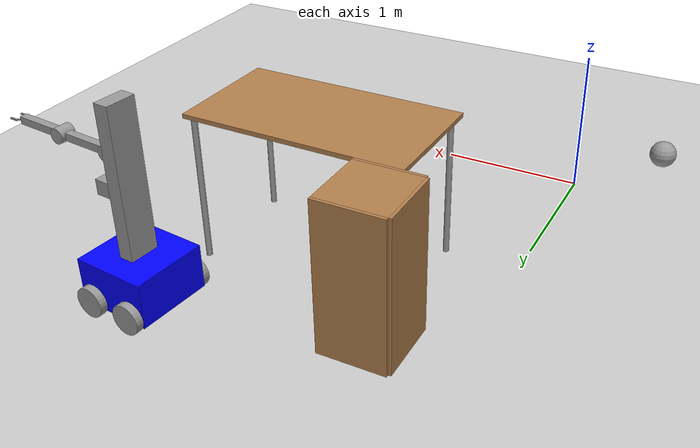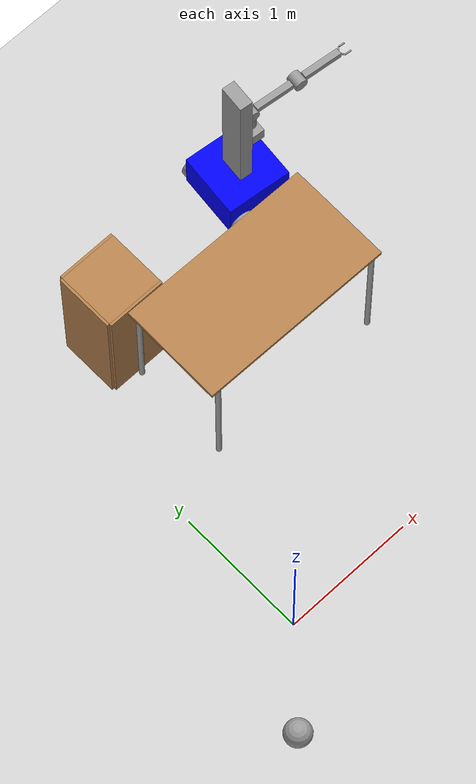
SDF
<sdf version="1.6">
 <world name="default">
  <model name="ground_plane">
   <static>1</static>
   <link name="link">
    <collision name="collision">
     <geometry><plane><normal>0 0 1</normal><size>100 100</size></plane></geometry>
     <surface>
      <contact><collide_bitmask>65535</collide_bitmask></contact>
      <friction><ode><mu>100</mu><mu2>50</mu2></ode></friction>
     </surface>
    </collision>
    <visual name="visual">
     <cast_shadows>0</cast_shadows>
     <geometry><plane><normal>0 0 1</normal><size>100 100</size></plane></geometry>
     <material>
      <script><uri>file://media/materials/scripts/gazebo.material</uri><name>Gazebo/Grey</name></script>
     </material>
    </visual>
   </link>
  </model>
  <model name="table_clone_0">
   <static>1</static>
   <link name="link">
    <collision name="surface">
     <pose>0 0 1 0 -0 0</pose>
     <geometry><box><size>1.5 0.8 0.03</size></box></geometry>
     <surface><friction><ode><mu>0.6</mu><mu2>0.6</mu2></ode></friction></surface>
    </collision>
    <visual name="visual1">
     <pose>0 0 1 0 -0 0</pose>
     <geometry><box><size>1.5 0.8 0.03</size></box></geometry>
     <material>
      <script><uri>file://media/materials/scripts/gazebo.material</uri><name>Gazebo/Wood</name></script>
     </material>
    </visual>
    <collision name="front_left_leg">
     <pose>0.68 0.38 0.5 0 -0 0</pose>
     <geometry><cylinder><radius>0.02</radius><length>1</length></cylinder></geometry>
    </collision>
    <visual name="front_left_leg">
     <pose>0.68 0.38 0.5 0 -0 0</pose>
     <geometry><cylinder><radius>0.02</radius><length>1</length></cylinder></geometry>
     <material>
      <script><uri>file://media/materials/scripts/gazebo.material</uri><name>Gazebo/Grey</name></script>
     </material>
    </visual>
    <collision name="front_right_leg">
     <pose>0.68 -0.38 0.5 0 -0 0</pose>
     <geometry><cylinder><radius>0.02</radius><length>1</length></cylinder></geometry>
    </collision>
    <visual name="front_right_leg">
     <pose>0.68 -0.38 0.5 0 -0 0</pose>
     <geometry><cylinder><radius>0.02</radius><length>1</length></cylinder></geometry>
     <material>
      <script><uri>file://media/materials/scripts/gazebo.material</uri><name>Gazebo/Grey</name></script>
     </material>
    </visual>
    <collision name="back_right_leg">
     <pose>-0.68 -0.38 0.5 0 -0 0</pose>
     <geometry><cylinder><radius>0.02</radius><length>1</length></cylinder></geometry>
    </collision>
    <visual name="back_right_leg">
     <pose>-0.68 -0.38 0.5 0 -0 0</pose>
     <geometry><cylinder><radius>0.02</radius><length>1</length></cylinder></geometry>
     <material>
      <script><uri>file://media/materials/scripts/gazebo.material</uri><name>Gazebo/Grey</name></script>
     </material>
    </visual>
    <collision name="back_left_leg">
     <pose>-0.68 0.38 0.5 0 -0 0</pose>
     <geometry><cylinder><radius>0.02</radius><length>1</length></cylinder></geometry>
    </collision>
    <visual name="back_left_leg">
     <pose>-0.68 0.38 0.5 0 -0 0</pose>
     <geometry><cylinder><radius>0.02</radius><length>1</length></cylinder></geometry>
     <material>
      <script><uri>file://media/materials/scripts/gazebo.material</uri><name>Gazebo/Grey</name></script>
     </material>
    </visual>
   </link>
   <pose>1.18612 1.61195 0 0 -0 3.13034</pose>
  </model>
  <model name="cabinet">
   <static>1</static>
   <link name="cabinet_bottom_plate">
    <inertial>
     <pose>0 0 -1 0 -0 0</pose>
     <inertia><ixx>2.05</ixx><ixy>0</ixy><ixz>0</ixz><iyy>2.05</iyy><iyz>0</iyz><izz>2.05</izz></inertia>
     <mass>25</mass>
    </inertial>
    <collision name="cabinet_bottom_plate_geom">
     <pose>0 0 0.01 0 -0 0</pose>
     <geometry><box><size>0.45 0.45 0.02</size></box></geometry>
    </collision>
    <visual name="cabinet_bottom_plate_geom_visual">
     <pose>0 0 0.01 0 -0 0</pose>
     <geometry><box><size>0.45 0.45 0.02</size></box></geometry>
     <material>
      <script><uri>file://media/materials/scripts/gazebo.material</uri><name>Gazebo/Wood</name></script>
     </material>
    </visual>
    <collision name="cabinet_bottom_plate_geom_cabinet_back_plate">
     <pose>0.235 0 0.51 0 -0 0</pose>
     <geometry><box><size>0.02 0.45 1.02</size></box></geometry>
    </collision>
    <visual name="cabinet_bottom_plate_geom_cabinet_back_plate_visual">
     <pose>0.235 0 0.51 0 -0 0</pose>
     <geometry><box><size>0.02 0.45 1.02</size></box></geometry>
     <material>
      <script><uri>file://media/materials/scripts/gazebo.material</uri><name>Gazebo/Wood</name></script>
     </material>
    </visual>
    <collision name="cabinet_bottom_plate_geom_cabinet_left_plate">
     <pose>0 0.235 0.51 0 -0 0</pose>
     <geometry><box><size>0.45 0.02 1.02</size></box></geometry>
    </collision>
    <visual name="cabinet_bottom_plate_geom_cabinet_left_plate_visual">
     <pose>0 0.235 0.51 0 -0 0</pose>
     <geometry><box><size>0.45 0.02 1.02</size></box></geometry>
     <material>
      <script><uri>file://media/materials/scripts/gazebo.material</uri><name>Gazebo/Wood</name></script>
     </material>
    </visual>
    <collision name="cabinet_bottom_plate_geom_cabinet_middle_plate">
     <pose>0 0 0.51 0 -0 0</pose>
     <geometry><box><size>0.45 0.45 0.02</size></box></geometry>
    </collision>
    <visual name="cabinet_bottom_plate_geom_cabinet_middle_plate_visual">
     <pose>0 0 0.51 0 -0 0</pose>
     <geometry><box><size>0.45 0.45 0.02</size></box></geometry>
     <material>
      <script><uri>file://media/materials/scripts/gazebo.material</uri><name>Gazebo/Wood</name></script>
     </material>
    </visual>
    <collision name="cabinet_bottom_plate_geom_cabinet_right_plate">
     <pose>0 -0.235 0.51 0 -0 0</pose>
     <geometry><box><size>0.45 0.02 1.02</size></box></geometry>
    </collision>
    <visual name="cabinet_bottom_plate_geom_cabinet_right_plate_visual">
     <pose>0 -0.235 0.51 0 -0 0</pose>
     <geometry><box><size>0.45 0.02 1.02</size></box></geometry>
     <material>
      <script><uri>file://media/materials/scripts/gazebo.material</uri><name>Gazebo/Wood</name></script>
     </material>
    </visual>
    <collision name="cabinet_bottom_plate_geom_cabinet_top_plate">
     <pose>0 0 1.01 0 -0 0</pose>
     <geometry><box><size>0.45 0.45 0.02</size></box></geometry>
    </collision>
    <visual name="cabinet_bottom_plate_geom_cabinet_top_plate_visual">
     <pose>0 0 1.01 0 -0 0</pose>
     <geometry><box><size>0.45 0.45 0.02</size></box></geometry>
     <material>
      <script><uri>file://media/materials/scripts/gazebo.material</uri><name>Gazebo/Wood</name></script>
     </material>
    </visual>
   </link>
   <pose>0.523108 2.26932 0 0 0 -3.13934</pose>
  </model>
  <model name="mymobilearm_0">
   <link name="link_0">
    <inertial>
     <mass>1</mass>
     <inertia>
      <ixx>0.166667</ixx>
      <ixy>0</ixy>
      <ixz>0</ixz>
      <iyy>0.166667</iyy>
      <iyz>0</iyz>
      <izz>0.166667</izz>
     </inertia>
    </inertial>
    <pose>-0.332375 0 -0.496874 0 -0 0</pose>
    <visual name="visual">
     <geometry><box><size>0.5 0.5 0.3</size></box></geometry>
     <material>
      <lighting>1</lighting>
      <script><uri>file://media/materials/scripts/gazebo.material</uri><name>Gazebo/Grey</name></script>
      <shader type="pixel"><normal_map>__default__</normal_map></shader>
      <ambient>0 0 1 1</ambient>
      <diffuse>0.7 0.7 0.7 1</diffuse>
      <specular>0.01 0.01 0.01 1</specular>
      <emissive>0 0 0 1</emissive>
     </material>
    </visual>
    <collision name="collision">
     <geometry><box><size>0.5 0.5 0.3</size></box></geometry>
     <surface>
      <friction>
       <ode><mu>1</mu><mu2>1</mu2><fdir1>0 0 0</fdir1><slip1>0</slip1><slip2>0</slip2></ode>
       <torsional>
        <coefficient>1</coefficient>
        <patch_radius>0</patch_radius>
        <surface_radius>0</surface_radius>
        <use_patch_radius>1</use_patch_radius>
        <ode><slip>0</slip></ode>
       </torsional>
      </friction>
      <bounce><restitution_coefficient>0</restitution_coefficient><threshold>1e+06</threshold></bounce>
      <contact>
       <collide_without_contact>0</collide_without_contact>
       <collide_without_contact_bitmask>1</collide_without_contact_bitmask>
       <collide_bitmask>1</collide_bitmask>
       <ode>
        <soft_cfm>0</soft_cfm>
        <soft_erp>0.2</soft_erp>
        <kp>1e+13</kp>
        <kd>1</kd>
        <max_vel>0.01</max_vel>
        <min_depth>0</min_depth>
       </ode>
       <bullet>
        <split_impulse>1</split_impulse>
        <split_impulse_penetration_threshold>-0.01</split_impulse_penetration_threshold>
        <soft_cfm>0</soft_cfm>
        <soft_erp>0.2</soft_erp>
        <kp>1e+13</kp>
        <kd>1</kd>
       </bullet>
      </contact>
     </surface>
    </collision>
   </link>
   <link name="link_10">
    <inertial>
     <mass>1</mass>
     <inertia>
      <ixx>0.166667</ixx>
      <ixy>0</ixy>
      <ixz>0</ixz>
      <iyy>0.166667</iyy>
      <iyz>0</iyz>
      <izz>0.166667</izz>
     </inertia>
    </inertial>
    <pose>-0.332375 0 0.153126 0 -0 0</pose>
    <visual name="visual">
     <geometry><box><size>0.1 0.2 1</size></box></geometry>
     <material>
      <lighting>1</lighting>
      <script><uri>file://media/materials/scripts/gazebo.material</uri><name>Gazebo/Grey</name></script>
      <shader type="pixel"><normal_map>__default__</normal_map></shader>
      <ambient>0.3 0.3 0.3 1</ambient>
      <diffuse>0.7 0.7 0.7 1</diffuse>
      <specular>0.01 0.01 0.01 1</specular>
      <emissive>0 0 0 1</emissive>
     </material>
    </visual>
    <collision name="collision">
     <geometry><box><size>0.1 0.2 1</size></box></geometry>
     <surface>
      <friction>
       <ode><mu>1</mu><mu2>1</mu2><fdir1>0 0 0</fdir1><slip1>0</slip1><slip2>0</slip2></ode>
       <torsional>
        <coefficient>1</coefficient>
        <patch_radius>0</patch_radius>
        <surface_radius>0</surface_radius>
        <use_patch_radius>1</use_patch_radius>
        <ode><slip>0</slip></ode>
       </torsional>
      </friction>
      <bounce><restitution_coefficient>0</restitution_coefficient><threshold>1e+06</threshold></bounce>
      <contact>
       <collide_without_contact>0</collide_without_contact>
       <collide_without_contact_bitmask>1</collide_without_contact_bitmask>
       <collide_bitmask>1</collide_bitmask>
       <ode>
        <soft_cfm>0</soft_cfm>
        <soft_erp>0.2</soft_erp>
        <kp>1e+13</kp>
        <kd>1</kd>
        <max_vel>0.01</max_vel>
        <min_depth>0</min_depth>
       </ode>
       <bullet>
        <split_impulse>1</split_impulse>
        <split_impulse_penetration_threshold>-0.01</split_impulse_penetration_threshold>
        <soft_cfm>0</soft_cfm>
        <soft_erp>0.2</soft_erp>
        <kp>1e+13</kp>
        <kd>1</kd>
       </bullet>
      </contact>
     </surface>
    </collision>
   </link>
   <link name="link_11">
    <inertial>
     <mass>1</mass>
     <inertia>
      <ixx>0.166667</ixx>
      <ixy>0</ixy>
      <ixz>0</ixz>
      <iyy>0.166667</iyy>
      <iyz>0</iyz>
      <izz>0.166667</izz>
     </inertia>
    </inertial>
    <pose>-0.232375 0 0.103126 0 -0 0</pose>
    <visual name="visual">
     <geometry><box><size>0.1 0.2 0.1</size></box></geometry>
     <material>
      <lighting>1</lighting>
      <script><uri>file://media/materials/scripts/gazebo.material</uri><name>Gazebo/Grey</name></script>
      <shader type="pixel"><normal_map>__default__</normal_map></shader>
      <ambient>0.3 0.3 0.3 1</ambient>
      <diffuse>0.7 0.7 0.7 1</diffuse>
      <specular>0.01 0.01 0.01 1</specular>
      <emissive>0 0 0 1</emissive>
     </material>
    </visual>
    <collision name="collision">
     <geometry><box><size>0.1 0.2 0.1</size></box></geometry>
     <surface>
      <friction>
       <ode><mu>1</mu><mu2>1</mu2><fdir1>0 0 0</fdir1><slip1>0</slip1><slip2>0</slip2></ode>
       <torsional>
        <coefficient>1</coefficient>
        <patch_radius>0</patch_radius>
        <surface_radius>0</surface_radius>
        <use_patch_radius>1</use_patch_radius>
        <ode><slip>0</slip></ode>
       </torsional>
      </friction>
      <bounce><restitution_coefficient>0</restitution_coefficient><threshold>1e+06</threshold></bounce>
      <contact>
       <collide_without_contact>0</collide_without_contact>
       <collide_without_contact_bitmask>1</collide_without_contact_bitmask>
       <collide_bitmask>1</collide_bitmask>
       <ode>
        <soft_cfm>0</soft_cfm>
        <soft_erp>0.2</soft_erp>
        <kp>1e+13</kp>
        <kd>1</kd>
        <max_vel>0.01</max_vel>
        <min_depth>0</min_depth>
       </ode>
       <bullet>
        <split_impulse>1</split_impulse>
        <split_impulse_penetration_threshold>-0.01</split_impulse_penetration_threshold>
        <soft_cfm>0</soft_cfm>
        <soft_erp>0.2</soft_erp>
        <kp>1e+13</kp>
        <kd>1</kd>
       </bullet>
      </contact>
     </surface>
    </collision>
   </link>
   <link name="link_12">
    <inertial>
     <mass>1</mass>
     <inertia><ixx>0.145833</ixx><ixy>0</ixy><ixz>0</ixz><iyy>0.145833</iyy><iyz>0</iyz><izz>0.125</izz></inertia>
    </inertial>
    <pose>-0.232375 0 0.203126 0 -0 0</pose>
    <visual name="visual">
     <geometry><cylinder><radius>0.05</radius><length>0.1</length></cylinder></geometry>
     <material>
      <lighting>1</lighting>
      <script><uri>file://media/materials/scripts/gazebo.material</uri><name>Gazebo/Grey</name></script>
      <shader type="pixel"><normal_map>__default__</normal_map></shader>
      <ambient>0.3 0.3 0.3 1</ambient>
      <diffuse>0.7 0.7 0.7 1</diffuse>
      <specular>0.01 0.01 0.01 1</specular>
      <emissive>0 0 0 1</emissive>
     </material>
    </visual>
    <collision name="collision">
     <geometry><cylinder><radius>0.05</radius><length>0.1</length></cylinder></geometry>
     <surface>
      <friction>
       <ode><mu>1</mu><mu2>1</mu2><fdir1>0 0 0</fdir1><slip1>0</slip1><slip2>0</slip2></ode>
       <torsional>
        <coefficient>1</coefficient>
        <patch_radius>0</patch_radius>
        <surface_radius>0</surface_radius>
        <use_patch_radius>1</use_patch_radius>
        <ode><slip>0</slip></ode>
       </torsional>
      </friction>
      <bounce><restitution_coefficient>0</restitution_coefficient><threshold>1e+06</threshold></bounce>
      <contact>
       <collide_without_contact>0</collide_without_contact>
       <collide_without_contact_bitmask>1</collide_without_contact_bitmask>
       <collide_bitmask>1</collide_bitmask>
       <ode>
        <soft_cfm>0</soft_cfm>
        <soft_erp>0.2</soft_erp>
        <kp>1e+13</kp>
        <kd>1</kd>
        <max_vel>0.01</max_vel>
        <min_depth>0</min_depth>
       </ode>
       <bullet>
        <split_impulse>1</split_impulse>
        <split_impulse_penetration_threshold>-0.01</split_impulse_penetration_threshold>
        <soft_cfm>0</soft_cfm>
        <soft_erp>0.2</soft_erp>
        <kp>1e+13</kp>
        <kd>1</kd>
       </bullet>
      </contact>
     </surface>
    </collision>
   </link>
   <link name="link_12_clone">
    <inertial>
     <mass>1</mass>
     <inertia><ixx>0.145833</ixx><ixy>0</ixy><ixz>0</ixz><iyy>0.145833</iyy><iyz>0</iyz><izz>0.125</izz></inertia>
    </inertial>
    <pose>-0.232375 0 0.303126 1.5707 -0 0</pose>
    <visual name="visual">
     <geometry><cylinder><radius>0.05</radius><length>0.1</length></cylinder></geometry>
     <material>
      <lighting>1</lighting>
      <script><uri>file://media/materials/scripts/gazebo.material</uri><name>Gazebo/Grey</name></script>
      <shader type="pixel"><normal_map>__default__</normal_map></shader>
      <ambient>0.3 0.3 0.3 1</ambient>
      <diffuse>0.7 0.7 0.7 1</diffuse>
      <specular>0.01 0.01 0.01 1</specular>
      <emissive>0 0 0 1</emissive>
     </material>
    </visual>
    <collision name="collision">
     <geometry><cylinder><radius>0.05</radius><length>0.1</length></cylinder></geometry>
     <surface>
      <friction>
       <ode><mu>1</mu><mu2>1</mu2><fdir1>0 0 0</fdir1><slip1>0</slip1><slip2>0</slip2></ode>
       <torsional>
        <coefficient>1</coefficient>
        <patch_radius>0</patch_radius>
        <surface_radius>0</surface_radius>
        <use_patch_radius>1</use_patch_radius>
        <ode><slip>0</slip></ode>
       </torsional>
      </friction>
      <bounce><restitution_coefficient>0</restitution_coefficient><threshold>1e+06</threshold></bounce>
      <contact>
       <collide_without_contact>0</collide_without_contact>
       <collide_without_contact_bitmask>1</collide_without_contact_bitmask>
       <collide_bitmask>1</collide_bitmask>
       <ode>
        <soft_cfm>0</soft_cfm>
        <soft_erp>0.2</soft_erp>
        <kp>1e+13</kp>
        <kd>1</kd>
        <max_vel>0.01</max_vel>
        <min_depth>0</min_depth>
       </ode>
       <bullet>
        <split_impulse>1</split_impulse>
        <split_impulse_penetration_threshold>-0.01</split_impulse_penetration_threshold>
        <soft_cfm>0</soft_cfm>
        <soft_erp>0.2</soft_erp>
        <kp>1e+13</kp>
        <kd>1</kd>
       </bullet>
      </contact>
     </surface>
    </collision>
   </link>
   <link name="link_12_clone_clone">
    <inertial>
     <mass>1</mass>
     <inertia><ixx>0.145833</ixx><ixy>0</ixy><ixz>0</ixz><iyy>0.145833</iyy><iyz>0</iyz><izz>0.125</izz></inertia>
    </inertial>
    <pose>0.167625 0 0.303126 1.5707 -0 0</pose>
    <visual name="visual">
     <geometry><cylinder><radius>0.05</radius><length>0.1</length></cylinder></geometry>
     <material>
      <lighting>1</lighting>
      <script><uri>file://media/materials/scripts/gazebo.material</uri><name>Gazebo/Grey</name></script>
      <shader type="pixel"><normal_map>__default__</normal_map></shader>
      <ambient>0.3 0.3 0.3 1</ambient>
      <diffuse>0.7 0.7 0.7 1</diffuse>
      <specular>0.01 0.01 0.01 1</specular>
      <emissive>0 0 0 1</emissive>
     </material>
    </visual>
    <collision name="collision">
     <geometry><cylinder><radius>0.05</radius><length>0.1</length></cylinder></geometry>
     <surface>
      <friction>
       <ode><mu>1</mu><mu2>1</mu2><fdir1>0 0 0</fdir1><slip1>0</slip1><slip2>0</slip2></ode>
       <torsional>
        <coefficient>1</coefficient>
        <patch_radius>0</patch_radius>
        <surface_radius>0</surface_radius>
        <use_patch_radius>1</use_patch_radius>
        <ode><slip>0</slip></ode>
       </torsional>
      </friction>
      <bounce><restitution_coefficient>0</restitution_coefficient><threshold>1e+06</threshold></bounce>
      <contact>
       <collide_without_contact>0</collide_without_contact>
       <collide_without_contact_bitmask>1</collide_without_contact_bitmask>
       <collide_bitmask>1</collide_bitmask>
       <ode>
        <soft_cfm>0</soft_cfm>
        <soft_erp>0.2</soft_erp>
        <kp>1e+13</kp>
        <kd>1</kd>
        <max_vel>0.01</max_vel>
        <min_depth>0</min_depth>
       </ode>
       <bullet>
        <split_impulse>1</split_impulse>
        <split_impulse_penetration_threshold>-0.01</split_impulse_penetration_threshold>
        <soft_cfm>0</soft_cfm>
        <soft_erp>0.2</soft_erp>
        <kp>1e+13</kp>
        <kd>1</kd>
       </bullet>
      </contact>
     </surface>
    </collision>
   </link>
   <link name="link_14">
    <inertial>
     <mass>1</mass>
     <inertia>
      <ixx>0.166667</ixx>
      <ixy>0</ixy>
      <ixz>0</ixz>
      <iyy>0.166667</iyy>
      <iyz>0</iyz>
      <izz>0.166667</izz>
     </inertia>
    </inertial>
    <pose>-0.032375 0 0.303126 1.5707 -0 0</pose>
    <visual name="visual">
     <geometry><box><size>0.3 0.05 0.05</size></box></geometry>
     <material>
      <lighting>1</lighting>
      <script><uri>file://media/materials/scripts/gazebo.material</uri><name>Gazebo/Grey</name></script>
      <shader type="pixel"><normal_map>__default__</normal_map></shader>
      <ambient>0.3 0.3 0.3 1</ambient>
      <diffuse>0.7 0.7 0.7 1</diffuse>
      <specular>0.01 0.01 0.01 1</specular>
      <emissive>0 0 0 1</emissive>
     </material>
    </visual>
    <collision name="collision">
     <geometry><box><size>0.3 0.05 0.05</size></box></geometry>
     <surface>
      <friction>
       <ode><mu>1</mu><mu2>1</mu2><fdir1>0 0 0</fdir1><slip1>0</slip1><slip2>0</slip2></ode>
       <torsional>
        <coefficient>1</coefficient>
        <patch_radius>0</patch_radius>
        <surface_radius>0</surface_radius>
        <use_patch_radius>1</use_patch_radius>
        <ode><slip>0</slip></ode>
       </torsional>
      </friction>
      <bounce><restitution_coefficient>0</restitution_coefficient><threshold>1e+06</threshold></bounce>
      <contact>
       <collide_without_contact>0</collide_without_contact>
       <collide_without_contact_bitmask>1</collide_without_contact_bitmask>
       <collide_bitmask>1</collide_bitmask>
       <ode>
        <soft_cfm>0</soft_cfm>
        <soft_erp>0.2</soft_erp>
        <kp>1e+13</kp>
        <kd>1</kd>
        <max_vel>0.01</max_vel>
        <min_depth>0</min_depth>
       </ode>
       <bullet>
        <split_impulse>1</split_impulse>
        <split_impulse_penetration_threshold>-0.01</split_impulse_penetration_threshold>
        <soft_cfm>0</soft_cfm>
        <soft_erp>0.2</soft_erp>
        <kp>1e+13</kp>
        <kd>1</kd>
       </bullet>
      </contact>
     </surface>
    </collision>
   </link>
   <link name="link_14_clone">
    <inertial>
     <mass>1</mass>
     <inertia>
      <ixx>0.166667</ixx>
      <ixy>0</ixy>
      <ixz>0</ixz>
      <iyy>0.166667</iyy>
      <iyz>0</iyz>
      <izz>0.166667</izz>
     </inertia>
    </inertial>
    <pose>0.367625 0 0.303126 1.5707 -0 0</pose>
    <visual name="visual">
     <geometry><box><size>0.3 0.05 0.05</size></box></geometry>
     <material>
      <lighting>1</lighting>
      <script><uri>file://media/materials/scripts/gazebo.material</uri><name>Gazebo/Grey</name></script>
      <shader type="pixel"><normal_map>__default__</normal_map></shader>
      <ambient>0.3 0.3 0.3 1</ambient>
      <diffuse>0.7 0.7 0.7 1</diffuse>
      <specular>0.01 0.01 0.01 1</specular>
      <emissive>0 0 0 1</emissive>
     </material>
    </visual>
    <collision name="collision">
     <geometry><box><size>0.3 0.05 0.05</size></box></geometry>
     <surface>
      <friction>
       <ode><mu>1</mu><mu2>1</mu2><fdir1>0 0 0</fdir1><slip1>0</slip1><slip2>0</slip2></ode>
       <torsional>
        <coefficient>1</coefficient>
        <patch_radius>0</patch_radius>
        <surface_radius>0</surface_radius>
        <use_patch_radius>1</use_patch_radius>
        <ode><slip>0</slip></ode>
       </torsional>
      </friction>
      <bounce><restitution_coefficient>0</restitution_coefficient><threshold>1e+06</threshold></bounce>
      <contact>
       <collide_without_contact>0</collide_without_contact>
       <collide_without_contact_bitmask>1</collide_without_contact_bitmask>
       <collide_bitmask>1</collide_bitmask>
       <ode>
        <soft_cfm>0</soft_cfm>
        <soft_erp>0.2</soft_erp>
        <kp>1e+13</kp>
        <kd>1</kd>
        <max_vel>0.01</max_vel>
        <min_depth>0</min_depth>
       </ode>
       <bullet>
        <split_impulse>1</split_impulse>
        <split_impulse_penetration_threshold>-0.01</split_impulse_penetration_threshold>
        <soft_cfm>0</soft_cfm>
        <soft_erp>0.2</soft_erp>
        <kp>1e+13</kp>
        <kd>1</kd>
       </bullet>
      </contact>
     </surface>
    </collision>
   </link>
   <link name="link_15">
    <inertial>
     <mass>1</mass>
     <inertia>
      <ixx>0.166667</ixx>
      <ixy>0</ixy>
      <ixz>0</ixz>
      <iyy>0.166667</iyy>
      <iyz>0</iyz>
      <izz>0.166667</izz>
     </inertia>
    </inertial>
    <pose>0.566625 0.036 0.303126 0 -0 0</pose>
    <visual name="visual">
     <geometry><box><size>0.05 0.01 0.01</size></box></geometry>
     <material>
      <lighting>1</lighting>
      <script><uri>file://media/materials/scripts/gazebo.material</uri><name>Gazebo/Grey</name></script>
      <shader type="pixel"><normal_map>__default__</normal_map></shader>
      <ambient>0.3 0.3 0.3 1</ambient>
      <diffuse>0.7 0.7 0.7 1</diffuse>
      <specular>0.01 0.01 0.01 1</specular>
      <emissive>0 0 0 1</emissive>
     </material>
    </visual>
    <collision name="collision">
     <geometry><box><size>0.05 0.01 0.01</size></box></geometry>
     <surface>
      <friction>
       <ode><mu>1</mu><mu2>1</mu2><fdir1>0 0 0</fdir1><slip1>0</slip1><slip2>0</slip2></ode>
       <torsional>
        <coefficient>1</coefficient>
        <patch_radius>0</patch_radius>
        <surface_radius>0</surface_radius>
        <use_patch_radius>1</use_patch_radius>
        <ode><slip>0</slip></ode>
       </torsional>
      </friction>
      <bounce><restitution_coefficient>0</restitution_coefficient><threshold>1e+06</threshold></bounce>
      <contact>
       <collide_without_contact>0</collide_without_contact>
       <collide_without_contact_bitmask>1</collide_without_contact_bitmask>
       <collide_bitmask>1</collide_bitmask>
       <ode>
        <soft_cfm>0</soft_cfm>
        <soft_erp>0.2</soft_erp>
        <kp>1e+13</kp>
        <kd>1</kd>
        <max_vel>0.01</max_vel>
        <min_depth>0</min_depth>
       </ode>
       <bullet>
        <split_impulse>1</split_impulse>
        <split_impulse_penetration_threshold>-0.01</split_impulse_penetration_threshold>
        <soft_cfm>0</soft_cfm>
        <soft_erp>0.2</soft_erp>
        <kp>1e+13</kp>
        <kd>1</kd>
       </bullet>
      </contact>
     </surface>
    </collision>
   </link>
   <link name="link_15_clone">
    <inertial>
     <mass>1</mass>
     <inertia>
      <ixx>0.166667</ixx>
      <ixy>0</ixy>
      <ixz>0</ixz>
      <iyy>0.166667</iyy>
      <iyz>0</iyz>
      <izz>0.166667</izz>
     </inertia>
    </inertial>
    <pose>0.566625 -0.036 0.303126 0 -0 0</pose>
    <visual name="visual">
     <geometry><box><size>0.05 0.01 0.01</size></box></geometry>
     <material>
      <lighting>1</lighting>
      <script><uri>file://media/materials/scripts/gazebo.material</uri><name>Gazebo/Grey</name></script>
      <shader type="pixel"><normal_map>__default__</normal_map></shader>
      <ambient>0.3 0.3 0.3 1</ambient>
      <diffuse>0.7 0.7 0.7 1</diffuse>
      <specular>0.01 0.01 0.01 1</specular>
      <emissive>0 0 0 1</emissive>
     </material>
    </visual>
    <collision name="collision">
     <geometry><box><size>0.05 0.01 0.01</size></box></geometry>
     <surface>
      <friction>
       <ode><mu>1</mu><mu2>1</mu2><fdir1>0 0 0</fdir1><slip1>0</slip1><slip2>0</slip2></ode>
       <torsional>
        <coefficient>1</coefficient>
        <patch_radius>0</patch_radius>
        <surface_radius>0</surface_radius>
        <use_patch_radius>1</use_patch_radius>
        <ode><slip>0</slip></ode>
       </torsional>
      </friction>
      <bounce><restitution_coefficient>0</restitution_coefficient><threshold>1e+06</threshold></bounce>
      <contact>
       <collide_without_contact>0</collide_without_contact>
       <collide_without_contact_bitmask>1</collide_without_contact_bitmask>
       <collide_bitmask>1</collide_bitmask>
       <ode>
        <soft_cfm>0</soft_cfm>
        <soft_erp>0.2</soft_erp>
        <kp>1e+13</kp>
        <kd>1</kd>
        <max_vel>0.01</max_vel>
        <min_depth>0</min_depth>
       </ode>
       <bullet>
        <split_impulse>1</split_impulse>
        <split_impulse_penetration_threshold>-0.01</split_impulse_penetration_threshold>
        <soft_cfm>0</soft_cfm>
        <soft_erp>0.2</soft_erp>
        <kp>1e+13</kp>
        <kd>1</kd>
       </bullet>
      </contact>
     </surface>
    </collision>
   </link>
   <link name="link_15_clone_0">
    <inertial>
     <mass>1</mass>
     <inertia>
      <ixx>0.166667</ixx>
      <ixy>0</ixy>
      <ixz>0</ixz>
      <iyy>0.166667</iyy>
      <iyz>0</iyz>
      <izz>0.166667</izz>
     </inertia>
    </inertial>
    <pose>0.527625 -0.02 0.303126 0 0 -0.785398</pose>
    <visual name="visual">
     <geometry><box><size>0.05 0.01 0.01</size></box></geometry>
     <material>
      <lighting>1</lighting>
      <script><uri>file://media/materials/scripts/gazebo.material</uri><name>Gazebo/Grey</name></script>
      <shader type="pixel"><normal_map>__default__</normal_map></shader>
      <ambient>0.3 0.3 0.3 1</ambient>
      <diffuse>0.7 0.7 0.7 1</diffuse>
      <specular>0.01 0.01 0.01 1</specular>
      <emissive>0 0 0 1</emissive>
     </material>
    </visual>
    <collision name="collision">
     <geometry><box><size>0.05 0.01 0.01</size></box></geometry>
     <surface>
      <friction>
       <ode><mu>1</mu><mu2>1</mu2><fdir1>0 0 0</fdir1><slip1>0</slip1><slip2>0</slip2></ode>
       <torsional>
        <coefficient>1</coefficient>
        <patch_radius>0</patch_radius>
        <surface_radius>0</surface_radius>
        <use_patch_radius>1</use_patch_radius>
        <ode><slip>0</slip></ode>
       </torsional>
      </friction>
      <bounce><restitution_coefficient>0</restitution_coefficient><threshold>1e+06</threshold></bounce>
      <contact>
       <collide_without_contact>0</collide_without_contact>
       <collide_without_contact_bitmask>1</collide_without_contact_bitmask>
       <collide_bitmask>1</collide_bitmask>
       <ode>
        <soft_cfm>0</soft_cfm>
        <soft_erp>0.2</soft_erp>
        <kp>1e+13</kp>
        <kd>1</kd>
        <max_vel>0.01</max_vel>
        <min_depth>0</min_depth>
       </ode>
       <bullet>
        <split_impulse>1</split_impulse>
        <split_impulse_penetration_threshold>-0.01</split_impulse_penetration_threshold>
        <soft_cfm>0</soft_cfm>
        <soft_erp>0.2</soft_erp>
        <kp>1e+13</kp>
        <kd>1</kd>
       </bullet>
      </contact>
     </surface>
    </collision>
   </link>
   <link name="link_15_clone_1">
    <inertial>
     <mass>1</mass>
     <inertia>
      <ixx>0.166667</ixx>
      <ixy>0</ixy>
      <ixz>0</ixz>
      <iyy>0.166667</iyy>
      <iyz>0</iyz>
      <izz>0.166667</izz>
     </inertia>
    </inertial>
    <pose>0.527625 0.02 0.303126 0 -0 0.785398</pose>
    <visual name="visual">
     <geometry><box><size>0.05 0.01 0.01</size></box></geometry>
     <material>
      <lighting>1</lighting>
      <script><uri>file://media/materials/scripts/gazebo.material</uri><name>Gazebo/Grey</name></script>
      <shader type="pixel"><normal_map>__default__</normal_map></shader>
      <ambient>0.3 0.3 0.3 1</ambient>
      <diffuse>0.7 0.7 0.7 1</diffuse>
      <specular>0.01 0.01 0.01 1</specular>
      <emissive>0 0 0 1</emissive>
     </material>
    </visual>
    <collision name="collision">
     <geometry><box><size>0.05 0.01 0.01</size></box></geometry>
     <surface>
      <friction>
       <ode><mu>1</mu><mu2>1</mu2><fdir1>0 0 0</fdir1><slip1>0</slip1><slip2>0</slip2></ode>
       <torsional>
        <coefficient>1</coefficient>
        <patch_radius>0</patch_radius>
        <surface_radius>0</surface_radius>
        <use_patch_radius>1</use_patch_radius>
        <ode><slip>0</slip></ode>
       </torsional>
      </friction>
      <bounce><restitution_coefficient>0</restitution_coefficient><threshold>1e+06</threshold></bounce>
      <contact>
       <collide_without_contact>0</collide_without_contact>
       <collide_without_contact_bitmask>1</collide_without_contact_bitmask>
       <collide_bitmask>1</collide_bitmask>
       <ode>
        <soft_cfm>0</soft_cfm>
        <soft_erp>0.2</soft_erp>
        <kp>1e+13</kp>
        <kd>1</kd>
        <max_vel>0.01</max_vel>
        <min_depth>0</min_depth>
       </ode>
       <bullet>
        <split_impulse>1</split_impulse>
        <split_impulse_penetration_threshold>-0.01</split_impulse_penetration_threshold>
        <soft_cfm>0</soft_cfm>
        <soft_erp>0.2</soft_erp>
        <kp>1e+13</kp>
        <kd>1</kd>
       </bullet>
      </contact>
     </surface>
    </collision>
   </link>
   <link name="link_1_clone">
    <inertial>
     <mass>1</mass>
     <inertia><ixx>0.145833</ixx><ixy>0</ixy><ixz>0</ixz><iyy>0.145833</iyy><iyz>0</iyz><izz>0.125</izz></inertia>
     <pose>0 0 0.1 0 -0 0</pose>
    </inertial>
    <pose>-0.182375 0.27501 -0.596879 1.5707 -0 0</pose>
    <visual name="visual">
     <geometry><cylinder><radius>0.1</radius><length>0.05</length></cylinder></geometry>
     <material>
      <lighting>1</lighting>
      <script><uri>file://media/materials/scripts/gazebo.material</uri><name>Gazebo/Grey</name></script>
      <shader type="pixel"><normal_map>__default__</normal_map></shader>
      <ambient>0.3 0.3 0.3 1</ambient>
      <diffuse>0.7 0.7 0.7 1</diffuse>
      <specular>0.01 0.01 0.01 1</specular>
      <emissive>0 0 0 1</emissive>
     </material>
    </visual>
    <collision name="collision">
     <geometry><cylinder><radius>0.1</radius><length>0.05</length></cylinder></geometry>
     <surface>
      <friction>
       <ode><mu>1</mu><mu2>1</mu2><fdir1>0 0 0</fdir1><slip1>0</slip1><slip2>0</slip2></ode>
       <torsional>
        <coefficient>1</coefficient>
        <patch_radius>0</patch_radius>
        <surface_radius>0</surface_radius>
        <use_patch_radius>1</use_patch_radius>
        <ode><slip>0</slip></ode>
       </torsional>
      </friction>
      <bounce><restitution_coefficient>0</restitution_coefficient><threshold>1e+06</threshold></bounce>
      <contact>
       <collide_without_contact>0</collide_without_contact>
       <collide_without_contact_bitmask>1</collide_without_contact_bitmask>
       <collide_bitmask>1</collide_bitmask>
       <ode>
        <soft_cfm>0</soft_cfm>
        <soft_erp>0.2</soft_erp>
        <kp>1e+13</kp>
        <kd>1</kd>
        <max_vel>0.01</max_vel>
        <min_depth>0</min_depth>
       </ode>
       <bullet>
        <split_impulse>1</split_impulse>
        <split_impulse_penetration_threshold>-0.01</split_impulse_penetration_threshold>
        <soft_cfm>0</soft_cfm>
        <soft_erp>0.2</soft_erp>
        <kp>1e+13</kp>
        <kd>1</kd>
       </bullet>
      </contact>
     </surface>
    </collision>
   </link>
   <link name="link_1_clone_clone">
    <inertial>
     <mass>1</mass>
     <inertia><ixx>0.145833</ixx><ixy>0</ixy><ixz>0</ixz><iyy>0.145833</iyy><iyz>0</iyz><izz>0.125</izz></inertia>
     <pose>0 0 0.1 0 -0 0</pose>
    </inertial>
    <pose>-0.182375 -0.27501 -0.596879 1.5707 -0 0</pose>
    <visual name="visual">
     <geometry><cylinder><radius>0.1</radius><length>0.05</length></cylinder></geometry>
     <material>
      <lighting>1</lighting>
      <script><uri>file://media/materials/scripts/gazebo.material</uri><name>Gazebo/Grey</name></script>
      <shader type="pixel"><normal_map>__default__</normal_map></shader>
      <ambient>0.3 0.3 0.3 1</ambient>
      <diffuse>0.7 0.7 0.7 1</diffuse>
      <specular>0.01 0.01 0.01 1</specular>
      <emissive>0 0 0 1</emissive>
     </material>
    </visual>
    <collision name="collision">
     <geometry><cylinder><radius>0.1</radius><length>0.05</length></cylinder></geometry>
     <surface>
      <friction>
       <ode><mu>1</mu><mu2>1</mu2><fdir1>0 0 0</fdir1><slip1>0</slip1><slip2>0</slip2></ode>
       <torsional>
        <coefficient>1</coefficient>
        <patch_radius>0</patch_radius>
        <surface_radius>0</surface_radius>
        <use_patch_radius>1</use_patch_radius>
        <ode><slip>0</slip></ode>
       </torsional>
      </friction>
      <bounce><restitution_coefficient>0</restitution_coefficient><threshold>1e+06</threshold></bounce>
      <contact>
       <collide_without_contact>0</collide_without_contact>
       <collide_without_contact_bitmask>1</collide_without_contact_bitmask>
       <collide_bitmask>1</collide_bitmask>
       <ode>
        <soft_cfm>0</soft_cfm>
        <soft_erp>0.2</soft_erp>
        <kp>1e+13</kp>
        <kd>1</kd>
        <max_vel>0.01</max_vel>
        <min_depth>0</min_depth>
       </ode>
       <bullet>
        <split_impulse>1</split_impulse>
        <split_impulse_penetration_threshold>-0.01</split_impulse_penetration_threshold>
        <soft_cfm>0</soft_cfm>
        <soft_erp>0.2</soft_erp>
        <kp>1e+13</kp>
        <kd>1</kd>
       </bullet>
      </contact>
     </surface>
    </collision>
   </link>
   <link name="link_1_clone_clone_0">
    <inertial>
     <mass>1</mass>
     <inertia><ixx>0.145833</ixx><ixy>0</ixy><ixz>0</ixz><iyy>0.145833</iyy><iyz>0</iyz><izz>0.125</izz></inertia>
     <pose>0 0 0.1 0 -0 0</pose>
    </inertial>
    <pose>-0.482375 -0.27501 -0.596879 1.5707 -0 0</pose>
    <visual name="visual">
     <geometry><cylinder><radius>0.1</radius><length>0.05</length></cylinder></geometry>
     <material>
      <lighting>1</lighting>
      <script><uri>file://media/materials/scripts/gazebo.material</uri><name>Gazebo/Grey</name></script>
      <shader type="pixel"><normal_map>__default__</normal_map></shader>
      <ambient>0.3 0.3 0.3 1</ambient>
      <diffuse>0.7 0.7 0.7 1</diffuse>
      <specular>0.01 0.01 0.01 1</specular>
      <emissive>0 0 0 1</emissive>
     </material>
    </visual>
    <collision name="collision">
     <geometry><cylinder><radius>0.1</radius><length>0.05</length></cylinder></geometry>
     <surface>
      <friction>
       <ode><mu>1</mu><mu2>1</mu2><fdir1>0 0 0</fdir1><slip1>0</slip1><slip2>0</slip2></ode>
       <torsional>
        <coefficient>1</coefficient>
        <patch_radius>0</patch_radius>
        <surface_radius>0</surface_radius>
        <use_patch_radius>1</use_patch_radius>
        <ode><slip>0</slip></ode>
       </torsional>
      </friction>
      <bounce><restitution_coefficient>0</restitution_coefficient><threshold>1e+06</threshold></bounce>
      <contact>
       <collide_without_contact>0</collide_without_contact>
       <collide_without_contact_bitmask>1</collide_without_contact_bitmask>
       <collide_bitmask>1</collide_bitmask>
       <ode>
        <soft_cfm>0</soft_cfm>
        <soft_erp>0.2</soft_erp>
        <kp>1e+13</kp>
        <kd>1</kd>
        <max_vel>0.01</max_vel>
        <min_depth>0</min_depth>
       </ode>
       <bullet>
        <split_impulse>1</split_impulse>
        <split_impulse_penetration_threshold>-0.01</split_impulse_penetration_threshold>
        <soft_cfm>0</soft_cfm>
        <soft_erp>0.2</soft_erp>
        <kp>1e+13</kp>
        <kd>1</kd>
       </bullet>
      </contact>
     </surface>
    </collision>
   </link>
   <link name="link_1_clone_clone_1">
    <inertial>
     <mass>1</mass>
     <inertia><ixx>0.145833</ixx><ixy>0</ixy><ixz>0</ixz><iyy>0.145833</iyy><iyz>0</iyz><izz>0.125</izz></inertia>
     <pose>0 0 0.1 0 -0 0</pose>
    </inertial>
    <pose>-0.482375 0.27501 -0.596879 1.5707 -0 0</pose>
    <visual name="visual">
     <geometry><cylinder><radius>0.1</radius><length>0.05</length></cylinder></geometry>
     <material>
      <lighting>1</lighting>
      <script><uri>file://media/materials/scripts/gazebo.material</uri><name>Gazebo/Grey</name></script>
      <shader type="pixel"><normal_map>__default__</normal_map></shader>
      <ambient>0.3 0.3 0.3 1</ambient>
      <diffuse>0.7 0.7 0.7 1</diffuse>
      <specular>0.01 0.01 0.01 1</specular>
      <emissive>0 0 0 1</emissive>
     </material>
    </visual>
    <collision name="collision">
     <geometry><cylinder><radius>0.1</radius><length>0.05</length></cylinder></geometry>
     <surface>
      <friction>
       <ode><mu>1</mu><mu2>1</mu2><fdir1>0 0 0</fdir1><slip1>0</slip1><slip2>0</slip2></ode>
       <torsional>
        <coefficient>1</coefficient>
        <patch_radius>0</patch_radius>
        <surface_radius>0</surface_radius>
        <use_patch_radius>1</use_patch_radius>
        <ode><slip>0</slip></ode>
       </torsional>
      </friction>
      <bounce><restitution_coefficient>0</restitution_coefficient><threshold>1e+06</threshold></bounce>
      <contact>
       <collide_without_contact>0</collide_without_contact>
       <collide_without_contact_bitmask>1</collide_without_contact_bitmask>
       <collide_bitmask>1</collide_bitmask>
       <ode>
        <soft_cfm>0</soft_cfm>
        <soft_erp>0.2</soft_erp>
        <kp>1e+13</kp>
        <kd>1</kd>
        <max_vel>0.01</max_vel>
        <min_depth>0</min_depth>
       </ode>
       <bullet>
        <split_impulse>1</split_impulse>
        <split_impulse_penetration_threshold>-0.01</split_impulse_penetration_threshold>
        <soft_cfm>0</soft_cfm>
        <soft_erp>0.2</soft_erp>
        <kp>1e+13</kp>
        <kd>1</kd>
       </bullet>
      </contact>
     </surface>
    </collision>
   </link>
   <joint name="link_0_JOINT_0" type="revolute">
    <parent>link_0</parent>
    <child>link_1_clone</child>
    <axis>
     <xyz>0 0 1</xyz>
     <use_parent_model_frame>0</use_parent_model_frame>
     <limit>
      <lower>-1.79769e+308</lower>
      <upper>1.79769e+308</upper>
      <effort>-1</effort>
      <velocity>-1</velocity>
     </limit>
     <dynamics>
      <spring_reference>0</spring_reference>
      <spring_stiffness>0</spring_stiffness>
      <damping>0</damping>
      <friction>0</friction>
     </dynamics>
     <use_parent_model_frame>1</use_parent_model_frame>
    </axis>
    <physics>
     <ode><limit><cfm>0</cfm><erp>0.2</erp></limit><suspension><cfm>0</cfm><erp>0.2</erp></suspension></ode>
    </physics>
   </joint>
   <joint name="link_0_JOINT_13" type="fixed">
    <parent>link_0</parent>
    <child>link_10</child>
    <physics>
     <ode><limit><cfm>0</cfm><erp>0.2</erp></limit><suspension><cfm>0</cfm><erp>0.2</erp></suspension></ode>
    </physics>
   </joint>
   <joint name="link_0_JOINT_1" type="revolute">
    <parent>link_0</parent>
    <child>link_1_clone_clone_1</child>
    <axis>
     <xyz>0 0 1</xyz>
     <use_parent_model_frame>0</use_parent_model_frame>
     <limit>
      <lower>-1.79769e+308</lower>
      <upper>1.79769e+308</upper>
      <effort>-1</effort>
      <velocity>-1</velocity>
     </limit>
     <dynamics>
      <spring_reference>0</spring_reference>
      <spring_stiffness>0</spring_stiffness>
      <damping>0</damping>
      <friction>0</friction>
     </dynamics>
     <use_parent_model_frame>1</use_parent_model_frame>
    </axis>
    <physics>
     <ode><limit><cfm>0</cfm><erp>0.2</erp></limit><suspension><cfm>0</cfm><erp>0.2</erp></suspension></ode>
    </physics>
   </joint>
   <joint name="link_0_JOINT_2" type="revolute">
    <parent>link_0</parent>
    <child>link_1_clone_clone_0</child>
    <axis>
     <xyz>0 0 1</xyz>
     <use_parent_model_frame>0</use_parent_model_frame>
     <limit>
      <lower>-1.79769e+308</lower>
      <upper>1.79769e+308</upper>
      <effort>-1</effort>
      <velocity>-1</velocity>
     </limit>
     <dynamics>
      <spring_reference>0</spring_reference>
      <spring_stiffness>0</spring_stiffness>
      <damping>0</damping>
      <friction>0</friction>
     </dynamics>
     <use_parent_model_frame>1</use_parent_model_frame>
    </axis>
    <physics>
     <ode><limit><cfm>0</cfm><erp>0.2</erp></limit><suspension><cfm>0</cfm><erp>0.2</erp></suspension></ode>
    </physics>
   </joint>
   <joint name="link_0_JOINT_3" type="revolute">
    <parent>link_0</parent>
    <child>link_1_clone_clone</child>
    <axis>
     <xyz>0 0 1</xyz>
     <use_parent_model_frame>0</use_parent_model_frame>
     <limit>
      <lower>-1.79769e+308</lower>
      <upper>1.79769e+308</upper>
      <effort>-1</effort>
      <velocity>-1</velocity>
     </limit>
     <dynamics>
      <spring_reference>0</spring_reference>
      <spring_stiffness>0</spring_stiffness>
      <damping>0</damping>
      <friction>0</friction>
     </dynamics>
     <use_parent_model_frame>1</use_parent_model_frame>
    </axis>
    <physics>
     <ode><limit><cfm>0</cfm><erp>0.2</erp></limit><suspension><cfm>0</cfm><erp>0.2</erp></suspension></ode>
    </physics>
   </joint>
   <joint name="link_10_JOINT_14" type="prismatic">
    <parent>link_10</parent>
    <child>link_11</child>
    <axis>
     <xyz>0 0 1</xyz>
     <use_parent_model_frame>0</use_parent_model_frame>
     <limit>
      <lower>-1.79769e+308</lower>
      <upper>1.79769e+308</upper>
      <effort>-1</effort>
      <velocity>-1</velocity>
     </limit>
     <dynamics>
      <spring_reference>0</spring_reference>
      <spring_stiffness>0</spring_stiffness>
      <damping>0</damping>
      <friction>0</friction>
     </dynamics>
     <use_parent_model_frame>1</use_parent_model_frame>
    </axis>
    <physics>
     <ode><limit><cfm>0</cfm><erp>0.2</erp></limit><suspension><cfm>0</cfm><erp>0.2</erp></suspension></ode>
    </physics>
   </joint>
   <joint name="link_11_JOINT_15" type="revolute">
    <parent>link_11</parent>
    <child>link_12</child>
    <axis>
     <xyz>0 0 1</xyz>
     <use_parent_model_frame>0</use_parent_model_frame>
     <limit>
      <lower>-1.79769e+308</lower>
      <upper>1.79769e+308</upper>
      <effort>-1</effort>
      <velocity>-1</velocity>
     </limit>
     <dynamics>
      <spring_reference>0</spring_reference>
      <spring_stiffness>0</spring_stiffness>
      <damping>0</damping>
      <friction>0</friction>
     </dynamics>
     <use_parent_model_frame>1</use_parent_model_frame>
    </axis>
    <physics>
     <ode><limit><cfm>0</cfm><erp>0.2</erp></limit><suspension><cfm>0</cfm><erp>0.2</erp></suspension></ode>
    </physics>
   </joint>
   <joint name="link_12_JOINT_16" type="revolute">
    <parent>link_12</parent>
    <child>link_12_clone</child>
    <axis>
     <xyz>0 0 1</xyz>
     <use_parent_model_frame>0</use_parent_model_frame>
     <limit>
      <lower>-1.79769e+308</lower>
      <upper>1.79769e+308</upper>
      <effort>-1</effort>
      <velocity>-1</velocity>
     </limit>
     <dynamics>
      <spring_reference>0</spring_reference>
      <spring_stiffness>0</spring_stiffness>
      <damping>0</damping>
      <friction>0</friction>
     </dynamics>
     <use_parent_model_frame>1</use_parent_model_frame>
    </axis>
    <physics>
     <ode><limit><cfm>0</cfm><erp>0.2</erp></limit><suspension><cfm>0</cfm><erp>0.2</erp></suspension></ode>
    </physics>
   </joint>
   <joint name="link_12_clone_JOINT_17" type="fixed">
    <parent>link_12_clone</parent>
    <child>link_14</child>
    <physics>
     <ode><limit><cfm>0</cfm><erp>0.2</erp></limit><suspension><cfm>0</cfm><erp>0.2</erp></suspension></ode>
    </physics>
   </joint>
   <joint name="link_12_clone_clone_JOINT_19" type="fixed">
    <parent>link_12_clone_clone</parent>
    <child>link_14_clone</child>
    <physics>
     <ode><limit><cfm>0</cfm><erp>0.2</erp></limit><suspension><cfm>0</cfm><erp>0.2</erp></suspension></ode>
    </physics>
   </joint>
   <joint name="link_14_JOINT_18" type="revolute">
    <parent>link_14</parent>
    <child>link_12_clone_clone</child>
    <axis>
     <xyz>0 0 1</xyz>
     <use_parent_model_frame>0</use_parent_model_frame>
     <limit>
      <lower>-1.79769e+308</lower>
      <upper>1.79769e+308</upper>
      <effort>-1</effort>
      <velocity>-1</velocity>
     </limit>
     <dynamics>
      <spring_reference>0</spring_reference>
      <spring_stiffness>0</spring_stiffness>
      <damping>0</damping>
      <friction>0</friction>
     </dynamics>
     <use_parent_model_frame>1</use_parent_model_frame>
    </axis>
    <physics>
     <ode><limit><cfm>0</cfm><erp>0.2</erp></limit><suspension><cfm>0</cfm><erp>0.2</erp></suspension></ode>
    </physics>
   </joint>
   <joint name="link_14_clone_JOINT_20" type="fixed">
    <parent>link_14_clone</parent>
    <child>link_15_clone_0</child>
    <physics>
     <ode><limit><cfm>0</cfm><erp>0.2</erp></limit><suspension><cfm>0</cfm><erp>0.2</erp></suspension></ode>
    </physics>
   </joint>
   <joint name="link_14_clone_JOINT_23" type="fixed">
    <parent>link_14_clone</parent>
    <child>link_15_clone_1</child>
    <physics>
     <ode><limit><cfm>0</cfm><erp>0.2</erp></limit><suspension><cfm>0</cfm><erp>0.2</erp></suspension></ode>
    </physics>
   </joint>
   <joint name="link_15_clone_0_JOINT_24" type="fixed">
    <parent>link_15_clone_0</parent>
    <child>link_15_clone</child>
    <physics>
     <ode><limit><cfm>0</cfm><erp>0.2</erp></limit><suspension><cfm>0</cfm><erp>0.2</erp></suspension></ode>
    </physics>
   </joint>
   <joint name="link_15_clone_1_JOINT_25" type="fixed">
    <parent>link_15_clone_1</parent>
    <child>link_15_LINK_FRAME_VISUAL___X_AXIS</child>
    <physics>
     <ode><limit><cfm>0</cfm><erp>0.2</erp></limit><suspension><cfm>0</cfm><erp>0.2</erp></suspension></ode>
    </physics>
   </joint>
   <static>0</static>
   <pose>2.25133 2.51946 0.696883 2e-06 -6e-06 -0.110517</pose>
  </model>
  <model name="my_ball">
   <link name="link_0">
    <inertial>
     <mass>1</mass>
     <inertia><ixx>0.1</ixx><ixy>0</ixy><ixz>0</ixz><iyy>0.1</iyy><iyz>0</iyz><izz>0.1</izz></inertia>
    </inertial>
    <visual name="visual">
     <geometry><sphere><radius>0.1</radius></sphere></geometry>
     <material>
      <lighting>1</lighting>
      <script><uri>file://media/materials/scripts/gazebo.material</uri><name>Gazebo/Grey</name></script>
      <ambient>1 1 1 1</ambient>
      <diffuse>1 1 1 1</diffuse>
      <specular>1 1 1 1</specular>
      <emissive>1 1 1 1</emissive>
      <shader type="vertex"><normal_map>__default__</normal_map></shader>
     </material>
    </visual>
    <collision name="collision">
     <geometry><sphere><radius>0.1</radius></sphere></geometry>
     <surface>
      <friction>
       <ode><mu>1</mu><mu2>1</mu2><fdir1>0 0 0</fdir1><slip1>0</slip1><slip2>0</slip2></ode>
       <torsional>
        <coefficient>1</coefficient>
        <patch_radius>0</patch_radius>
        <surface_radius>0</surface_radius>
        <use_patch_radius>1</use_patch_radius>
        <ode><slip>0</slip></ode>
       </torsional>
      </friction>
      <bounce><restitution_coefficient>0</restitution_coefficient><threshold>1e+06</threshold></bounce>
      <contact>
       <collide_without_contact>0</collide_without_contact>
       <collide_without_contact_bitmask>1</collide_without_contact_bitmask>
       <collide_bitmask>1</collide_bitmask>
       <ode>
        <soft_cfm>0</soft_cfm>
        <soft_erp>0.2</soft_erp>
        <kp>1e+13</kp>
        <kd>1</kd>
        <max_vel>0.01</max_vel>
        <min_depth>0</min_depth>
       </ode>
       <bullet>
        <split_impulse>1</split_impulse>
        <split_impulse_penetration_threshold>-0.01</split_impulse_penetration_threshold>
        <soft_cfm>0</soft_cfm>
        <soft_erp>0.2</soft_erp>
        <kp>1e+13</kp>
        <kd>1</kd>
       </bullet>
      </contact>
     </surface>
    </collision>
   </link>
   <static>0</static>
   <pose>-0.515943 -0.574356 0.1 0 -0 0</pose>
  </model>
 </world>
</sdf>
